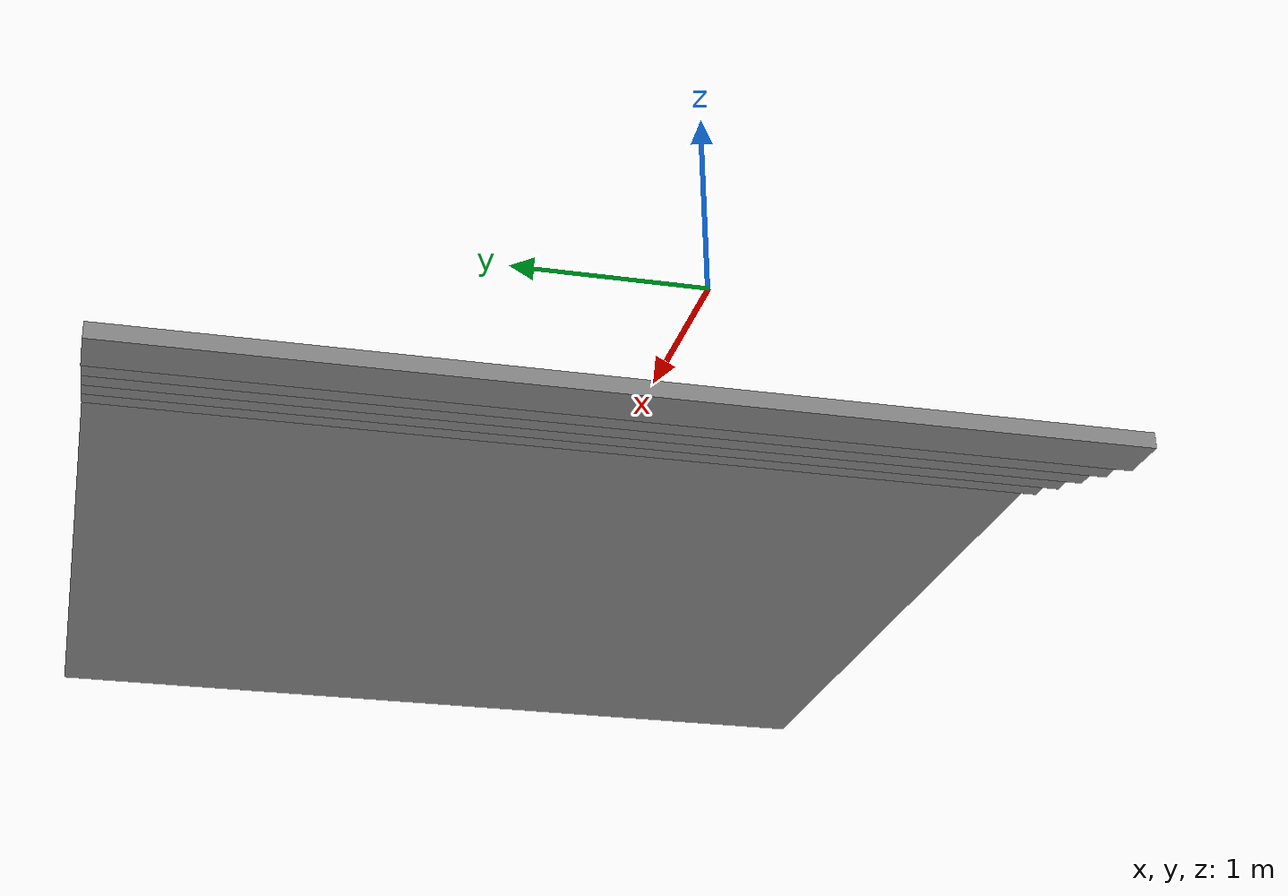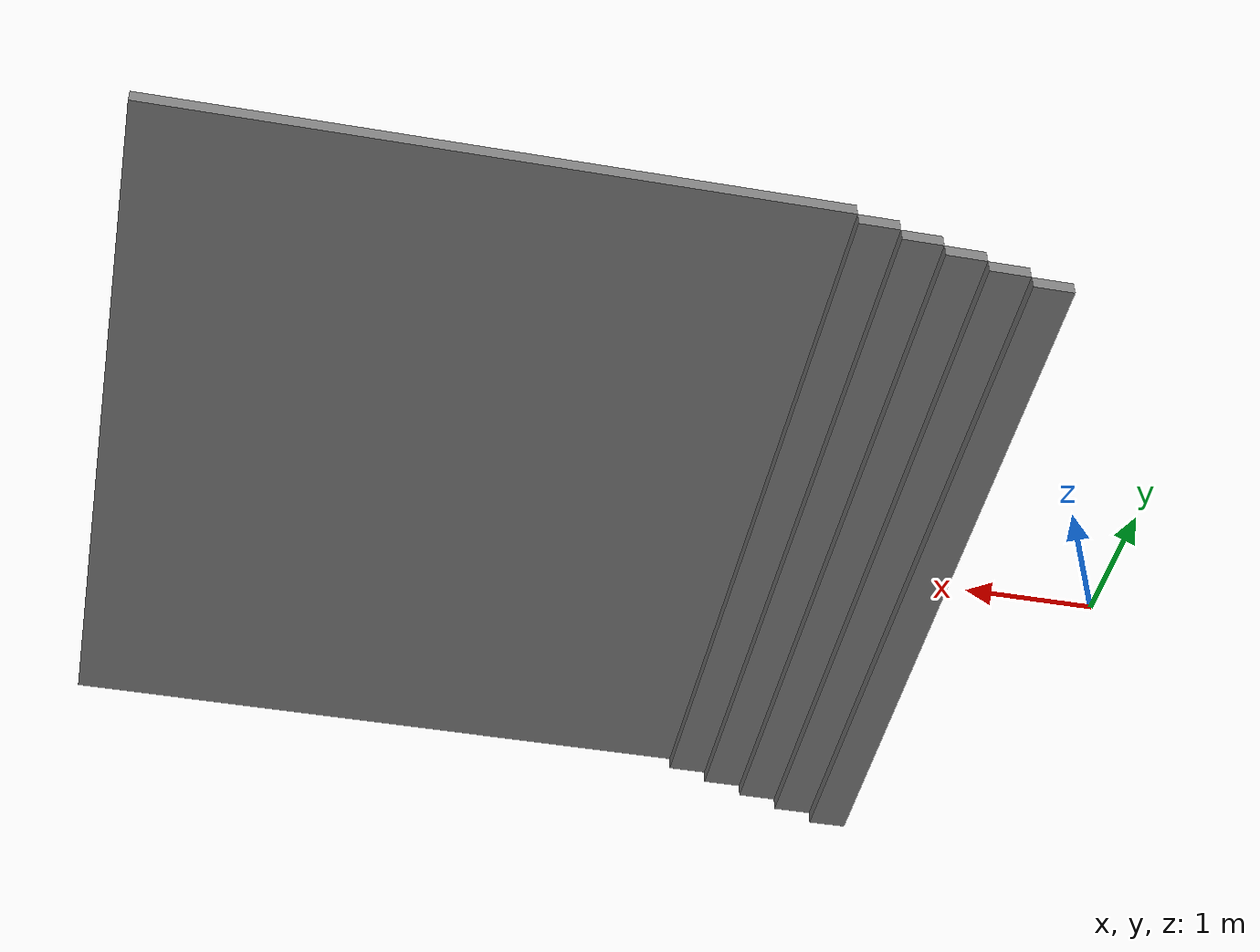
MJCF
<?xml version="1.0" encoding="UTF-8" ?>
<!-- 模型根节点：模型名 stair_terrain -->
<mujoco model="stair_terrain">
    <!-- 全局重力设置：z 轴向下 -9.81 m/s^2 -->
    <option gravity="0 0 -9.81" />

    <!-- 世界坐标系（场景根） -->
    <worldbody>
        <!-- （已注释，备用）平面地面 geom：如不需要台阶可取消注释 -->

        <!-- stair  -->
        <!-- 台阶父 body：整体位于 x=0.8 处 -->
        <body name="staircase" pos="0.8 0 0">
            <!-- 第 1 级台阶：高 0.05，中心 x=0.5（半宽 0.15，半高 0.05） -->
            <geom name="stair1" type="box" pos="0.5 0 0.05" size="0.15 3.0 0.05" rgba="0.5 0.5 0.5 1"/>
            <!-- 第 2 级台阶：高 0.15（累加 0.1），中心 x=0.8 -->
            <geom name="stair2" type="box" pos="0.8 0 0.15" size="0.15 3.0 0.05" rgba="0.5 0.5 0.5 1"/>
            <!-- 第 3 级台阶：高 0.25，中心 x=1.1 -->
            <geom name="stair3" type="box" pos="1.1 0 0.25" size="0.15 3.0 0.05" rgba="0.5 0.5 0.5 1"/>
            <!-- 第 4 级台阶：高 0.35，中心 x=1.4 -->
            <geom name="stair4" type="box" pos="1.4 0 0.35" size="0.15 3.0 0.05" rgba="0.5 0.5 0.5 1"/>
            <!-- 第 5 级台阶：高 0.45，中心 x=1.7 -->
            <geom name="stair5" type="box" pos="1.7 0 0.45" size="0.15 3.0 0.05" rgba="0.5 0.5 0.5 1"/>
            <!-- 末端平台：高 0.55，中心 x=4.35（宽 5.0） -->
            <geom name="stair6" type="box" pos="4.35 0 0.55" size="2.5 3.0 0.05" rgba="0.5 0.5 0.5 1"/>
        </body>
    </worldbody>
</mujoco>
